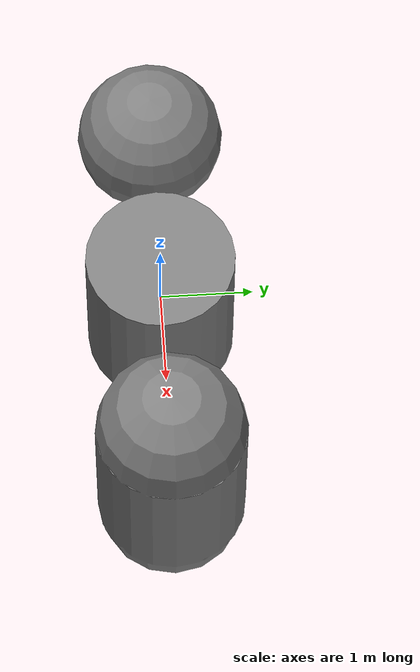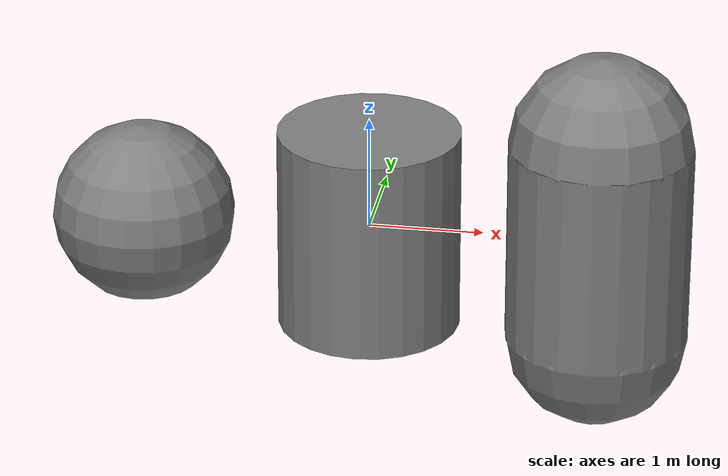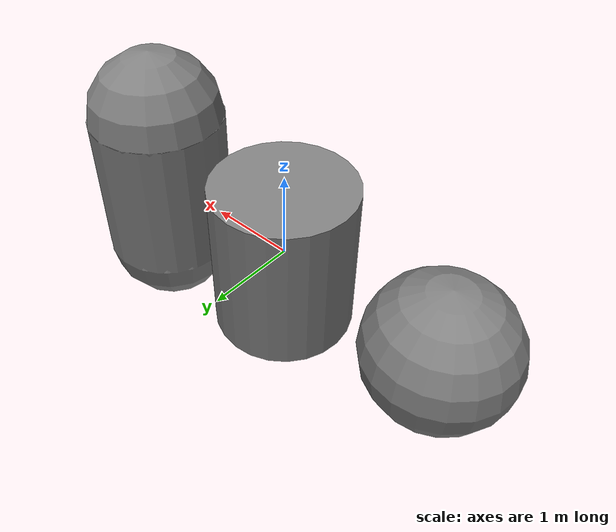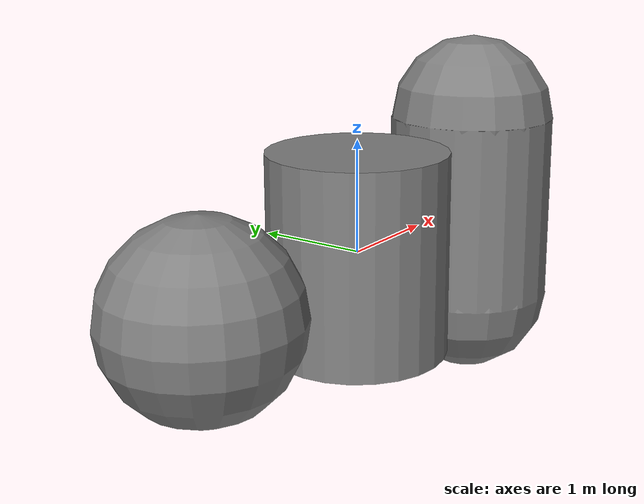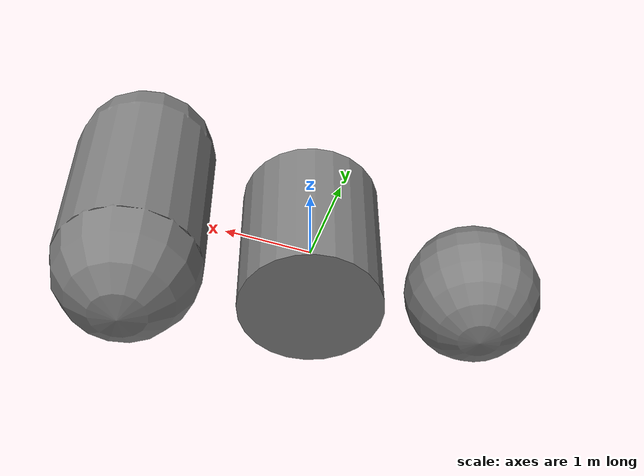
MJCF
<mujoco>
  <default>
    <geom size=".8 .9"/>
    <!-- These are arbitrary, the capsule-related `MjCGeomTest` instances pass for any values. -->
  </default>

  <worldbody>
    <body pos="-2 0 0" name="sphere">
      <geom type="sphere"/>
    </body>

    <body name="cylinder">
      <geom type="cylinder"/>
    </body>

    <body pos="2 0 0" name="capsule">
      <geom type="capsule"/>
    </body>
  </worldbody>
</mujoco>
